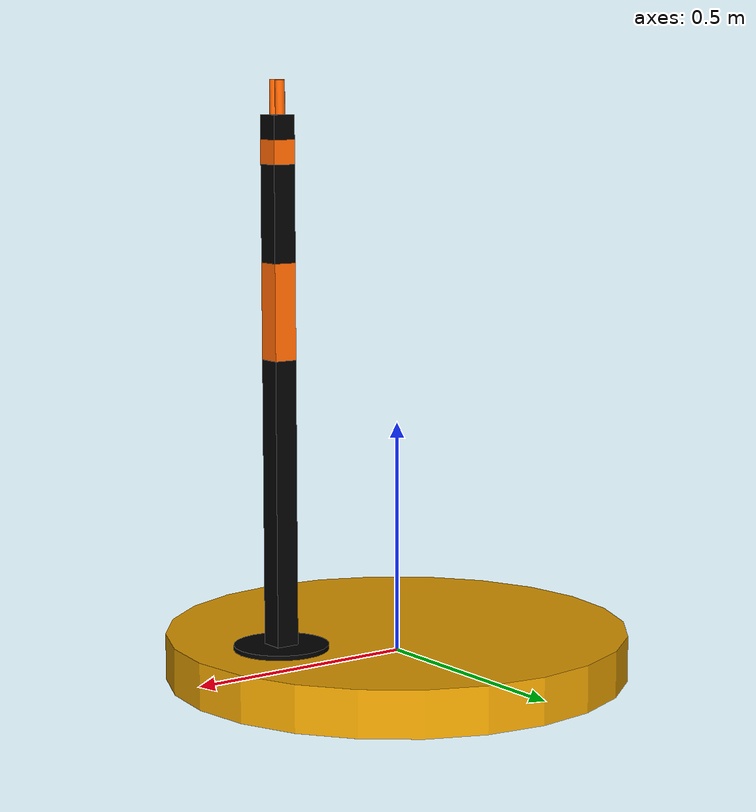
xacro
<?xml version="1.0" ?>
<robot name="testarm" xmlns:xacro="http://www.ros.org/wiki/xacro">

    <xacro:include filename="$(find rover_config)/urdf/arm.xacro"/>

      <link name="base_link">
        <collision>
          <origin rpy="0 0 0" xyz="0.0 0.0 0.0"/>
          <geometry>
            <cylinder length="0.1" radius="0.5"/>
          </geometry>
        </collision>
        <visual>
          <origin rpy="0 0 0" xyz="0.0 0.0 0.0"/>
          <geometry>
            <cylinder length="0.1" radius="0.5"/>
          </geometry>
        </visual>
        <inertial>
            <origin rpy="0 0 0" xyz="0 0 0"/>
            <mass value="100"/>
            <cylinder_inertia m="100" r="${0.5}" h="${0.1}" />
        </inertial>
      </link>

      <arm parent="base_link" translateX="0.3" translateY="0" translateZ="0.05"/>

   <gazebo>
      <plugin name="joint_state_publisher" filename="libgazebo_ros_joint_state_publisher.so">
         <jointName>
            joint_base,
            joint0,
            joint1,
            joint2,
            joint3,
            joint4,
            joint5,
            joint6
         </jointName>
         <robotNameSpace>/</robotNameSpace>
         <updateRate>100</updateRate>
         <alwaysOn>true</alwaysOn>
      </plugin>
   </gazebo>

    <gazebo>
        <plugin name="gazebo_ros_control" filename="libgazebo_ros_control.so">
            <robotNamespace>/nimrod</robotNamespace>
        </plugin>
    </gazebo>

</robot>

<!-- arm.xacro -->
<robot name="arm"
    xmlns:xacro="http://www.ros.org/wiki/xacro">

    <xacro:property name="link0_len" value="0.01" />
    <xacro:property name="link0_rad" value="0.1" />
    <xacro:property name="link1_len" value="0.6" />
    <xacro:property name="link1_width" value="0.05" />
    <xacro:property name="link2_len" value="0.2" />
    <xacro:property name="link2_width" value="0.05" />
    <xacro:property name="link3_len" value="0.2" />
    <xacro:property name="link3_width" value="0.05" />
    <xacro:property name="link4_len" value="0.05" />
    <xacro:property name="link4_width" value="0.05" />
    <xacro:property name="link5_len" value="0.05" />
    <xacro:property name="link5_width" value="0.05" />
    <xacro:property name="gripper_len" value="0.07" />
    <xacro:property name="gripper_rad" value="0.01" />
    <xacro:property name="offset_gripper" value="0.01" />
    <xacro:property name="lim_eff" value="300" />
    <xacro:property name="lim_low" value="-0.78539816339" />
    <xacro:property name="lim_up" value="0.78539816339" />
    <xacro:property name="lim_vel" value="1.571" />

    <xacro:macro name="box_inertia" params="m x y z">
        <inertia ixx="${0.0833333 * m * (y*y + z*z)}" ixy="0.0" ixz="0.0" iyy="${0.0833333 * m * (x*x + z*z)}" iyz="0.0" izz="${0.0833333 * m * (x*x + y*y)}" />
    </xacro:macro>

    <xacro:macro name="cylinder_inertia" params="m r h">
        <inertia ixx="${ m * ( 3 * r*r + h*h ) / 12}" ixy="0" ixz="0" iyy="${ m * ( 3 * r*r + h*h ) / 12}" iyz="0" izz="${ m * r / 2}" />
    </xacro:macro>

    <material name="black">
        <color rgba="0.0 0.0 0.0 1.0"/>
    </material>
    <material name="orange">
        <color rgba="1.0 0.4 0.0 1.0"/>
    </material>

    <xacro:macro name="arm" params="parent translateX translateY translateZ">

        <joint name="joint_base" type="revolute">
            <parent link="${parent}"/>
            <child link="link0"/>
            <origin rpy="0 0 0" xyz="${translateX} ${translateY} ${translateZ}"/>
            <axis xyz="0 0 1"/>
            <limit effort="${lim_eff}" lower="${lim_low}" upper="${lim_up}" velocity="${lim_vel}"/>
        </joint>

        <link name="link0">
            <collision>
                <origin rpy="0 0 0" xyz="0 0 ${link0_len/2}"/>
                <geometry>
                    <cylinder length="${link0_len}" radius="${link0_rad}"/>
                </geometry>
            </collision>
            <visual>
                <origin rpy="0 0 0" xyz="0 0 ${link0_len/2}"/>
                <geometry>
                    <cylinder length="${link0_len}" radius="${link0_rad}"/>
                </geometry>
                <material name="black"/>
            </visual>
            <inertial>
                <origin rpy="0 0 0" xyz="0 0 ${link0_len/2}"/>
                <mass value="1"/>
                <cylinder_inertia m="1" r="${link0_rad}" h="${link0_len}" />
            </inertial>
        </link>
        <joint name="joint0" type="revolute">
            <parent link="link0"/>
            <child link="link1"/>
            <origin rpy="0 0 0" xyz="0 0 ${link0_len}"/>
            <axis xyz="0 1 0"/>
            <limit effort="${lim_eff}" lower="${lim_low}" upper="${lim_up}" velocity="${lim_vel}"/>
        </joint>

        <link name="link1">
            <collision>
                <origin rpy="0 0 0" xyz="0 0 ${link1_len/2}"/>
                <geometry>
                    <box size="${link1_width} ${link1_width} ${link1_len}"/>
                </geometry>
            </collision>
            <visual>
                <origin rpy="0 0 0" xyz="0 0 ${link1_len/2}"/>
                <geometry>
                    <box size="${link1_width} ${link1_width} ${link1_len}"/>
                </geometry>
                <material name="black"/>
            </visual>
            <inertial>
                <origin rpy="0 0 0" xyz="0 0 ${link1_len/2}"/>
                <mass value="1"/>
                <box_inertia m="1" x="${link1_width}" y="${link1_width}" z="${link1_len}" />
            </inertial>
        </link>

        <joint name="joint1" type="revolute">
            <parent link="link1"/>
            <child link="link2"/>
            <origin rpy="0 0 0" xyz="0 0 ${link1_len}"/>
            <axis xyz="0 1 0"/>
            <limit effort="${lim_eff}" lower="${lim_low}" upper="${lim_up}" velocity="${lim_vel}"/>
        </joint>

        <link name="link2">
            <collision>
                <origin rpy="0 0 0" xyz="0 0 ${link2_len/2}"/>
                <geometry>
                    <box size="${link2_width} ${link2_width} ${link2_len}"/>
                </geometry>
            </collision>
            <visual>
                <origin rpy="0 0 0" xyz="0 0 ${link2_len/2}"/>
                <geometry>
                    <box size="${link2_width} ${link2_width} ${link2_len}"/>
                </geometry>
                <material name="orange"/>
            </visual>
            <inertial>
                <origin rpy="0 0 0" xyz="0 0 ${link2_len/2}"/>
                <mass value="1"/>
                <box_inertia m="1" x="${link2_width}" y="${link2_width}" z="${link2_len}" />
            </inertial>
        </link>

        <joint name="joint2" type="revolute">
            <parent link="link2"/>
            <child link="link3"/>
            <origin rpy="0 0 0" xyz="0 0 ${link2_len}"/>
            <axis xyz="0 0 1"/>
            <limit effort="${lim_eff}" lower="${lim_low}" upper="${lim_up}" velocity="${lim_vel}"/>
        </joint>

        <link name="link3">
            <collision>
                <origin rpy="0 0 0" xyz="0 0 ${link3_len/2}"/>
                <geometry>
                    <box size="${link3_width} ${link3_width} ${link3_len}"/>
                </geometry>
            </collision>
            <visual>
                <origin rpy="0 0 0" xyz="0 0 ${link3_len/2}"/>
                <geometry>
                    <box size="${link3_width} ${link3_width} ${link3_len}"/>
                </geometry>
                <material name="black"/>
            </visual>
            <inertial>
                <origin rpy="0 0 0" xyz="0 0 ${link3_len/2}"/>
                <mass value="1"/>
                <box_inertia m="1" x="${link3_width}" y="${link3_width}" z="${link3_len}" />
            </inertial>
        </link>

        <joint name="joint3" type="revolute">
            <parent link="link3"/>
            <child link="link4"/>
            <origin rpy="0 0 0" xyz="0 0 ${link3_len}"/>
            <axis xyz="0 1 0"/>
            <limit effort="${lim_eff}" lower="${lim_low}" upper="${lim_up}" velocity="${lim_vel}"/>
        </joint>

        <link name="link4">
            <collision>
                <origin rpy="0 0 0" xyz="0 0 ${link4_len/2}"/>
                <geometry>
                    <box size="${link4_width} ${link4_width} ${link4_len}"/>
                </geometry>
            </collision>
            <visual>
                <origin rpy="0 0 0" xyz="0 0 ${link4_len/2}"/>
                <geometry>
                    <box size="${link4_width} ${link4_width} ${link4_len}"/>
                </geometry>
                <material name="orange"/>
            </visual>
            <inertial>
                <origin rpy="0 0 0" xyz="0 0 ${link4_len/2}"/>
                <mass value="1"/>
                <box_inertia m="1" x="${link4_width}" y="${link4_width}" z="${link4_len}" />
            </inertial>
        </link>

        <joint name="joint4" type="revolute">
            <parent link="link4"/>
            <child link="link5"/>
            <origin rpy="0 0 0" xyz="0 0 ${link4_len}"/>
            <axis xyz="0 0 1"/>
            <limit effort="${lim_eff}" lower="${lim_low}" upper="${lim_up}" velocity="${lim_vel}"/>
        </joint>

        <link name="link5">
            <collision>
                <origin rpy="0 0 0" xyz="0 0 ${link5_len/2}"/>
                <geometry>
                    <box size="${link5_width} ${link5_width} ${link5_len}"/>
                </geometry>
            </collision>
            <visual>
                <origin rpy="0 0 0" xyz="0 0 ${link5_len/2}"/>
                <geometry>
                    <box size="${link5_width} ${link5_width} ${link5_len}"/>
                </geometry>
                <material name="black"/>
            </visual>
            <inertial>
                <origin rpy="0 0 0" xyz="0 0 ${link5_len/2}"/>
                <mass value="1"/>
                <box_inertia m="1" x="${link5_width}" y="${link5_width}" z="${link5_len}" />
            </inertial>
        </link>

        <joint name="joint5" type="revolute">
            <parent link="link5"/>
            <child link="gripper_left"/>
            <origin rpy="0 0 0" xyz="0 ${offset_gripper} ${link5_len}"/>
            <axis xyz="1 0 0"/>
            <limit effort="${lim_eff}" lower="${lim_low}" upper="${lim_up}" velocity="${lim_vel}"/>
        </joint>

        <joint name="joint6" type="revolute">
            <parent link="link5"/>
            <child link="gripper_right"/>
            <origin rpy="0 0 0" xyz="0 -${offset_gripper} ${link5_len}"/>
            <axis xyz="1 0 0"/>
            <limit effort="${lim_eff}" lower="${lim_low}" upper="${lim_up}" velocity="${lim_vel}"/>
        </joint>

        <link name="gripper_left">
            <collision>
                <origin rpy="0 0 0" xyz="0 0 ${gripper_len/2}"/>
                <geometry>
                    <cylinder length="${gripper_len}" radius="${gripper_rad}"/>
                </geometry>
            </collision>
            <visual>
                <origin rpy="0 0 0" xyz="0 0 ${gripper_len/2}"/>
                <geometry>
                    <cylinder length="${gripper_len}" radius="${gripper_rad}"/>
                </geometry>
                <material name="orange"/>
            </visual>
            <inertial>
                <origin rpy="0 0 0" xyz="0 0 ${gripper_len/2}"/>
                <mass value="1"/>
                <cylinder_inertia m="1" r="${gripper_rad}" h="${gripper_len}" />
            </inertial>
        </link>

        <link name="gripper_right">
            <collision>
                <origin rpy="0 0 0" xyz="0 0 ${gripper_len/2}"/>
                <geometry>
                    <cylinder length="${gripper_len}" radius="${gripper_rad}"/>
                </geometry>
            </collision>
            <visual>
                <origin rpy="0 0 0" xyz="0 0 ${gripper_len/2}"/>
                <geometry>
                    <cylinder length="${gripper_len}" radius="${gripper_rad}"/>
                </geometry>
                <material name="orange"/>
            </visual>
            <inertial>
                <origin rpy="0 0 0" xyz="0 0 ${gripper_len/2}"/>
                <mass value="1"/>
                <cylinder_inertia m="1" r="${gripper_rad}" h="${gripper_len}" />
            </inertial>
        </link>
        <!-- Transmission is important to link the joint and the controller -->

        <transmission name="joint_base_trans">
            <type>transmission_interface/SimpleTransmission</type>
            <joint name="joint_base">
                <hardwareInterface>hardware_interface/EffortJointInterface</hardwareInterface>
            </joint>
            <actuator name="joint_base_motor">
                <mechanicalReduction>1</mechanicalReduction>
            </actuator>
        </transmission>

        <transmission name="joint0_trans">
            <type>transmission_interface/SimpleTransmission</type>
            <joint name="joint0">
                <hardwareInterface>hardware_interface/EffortJointInterface</hardwareInterface>
            </joint>
            <actuator name="joint0_motor">
                <mechanicalReduction>1</mechanicalReduction>
            </actuator>
        </transmission>

        <transmission name="joint1_trans">
            <type>transmission_interface/SimpleTransmission</type>
            <joint name="joint1">
                <hardwareInterface>hardware_interface/EffortJointInterface</hardwareInterface>
            </joint>
            <actuator name="joint1_motor">
                <mechanicalReduction>1</mechanicalReduction>
            </actuator>
        </transmission>

        <transmission name="joint2_trans">
            <type>transmission_interface/SimpleTransmission</type>
            <joint name="joint2">
                <hardwareInterface>hardware_interface/EffortJointInterface</hardwareInterface>
            </joint>
            <actuator name="joint2_motor">
                <mechanicalReduction>1</mechanicalReduction>
            </actuator>
        </transmission>

        <transmission name="joint3_trans">
            <type>transmission_interface/SimpleTransmission</type>
            <joint name="joint3">
                <hardwareInterface>hardware_interface/EffortJointInterface</hardwareInterface>
            </joint>
            <actuator name="joint3_motor">
                <mechanicalReduction>1</mechanicalReduction>
            </actuator>
        </transmission>

        <transmission name="joint4_trans">
            <type>transmission_interface/SimpleTransmission</type>
            <joint name="joint4">
                <hardwareInterface>hardware_interface/EffortJointInterface</hardwareInterface>
            </joint>
            <actuator name="joint4_motor">
                <mechanicalReduction>1</mechanicalReduction>
            </actuator>
        </transmission>

        <transmission name="joint5_trans">
            <type>transmission_interface/SimpleTransmission</type>
            <joint name="joint5">
                <hardwareInterface>hardware_interface/EffortJointInterface</hardwareInterface>
            </joint>
            <actuator name="joint5_motor">
                <mechanicalReduction>1</mechanicalReduction>
            </actuator>
        </transmission>

        <transmission name="joint6_trans">
            <type>transmission_interface/SimpleTransmission</type>
            <joint name="joint6">
                <hardwareInterface>hardware_interface/EffortJointInterface</hardwareInterface>
            </joint>
            <actuator name="joint6_motor">
                <mechanicalReduction>1</mechanicalReduction>
            </actuator>
            </transmission>

    </xacro:macro>

</robot>
